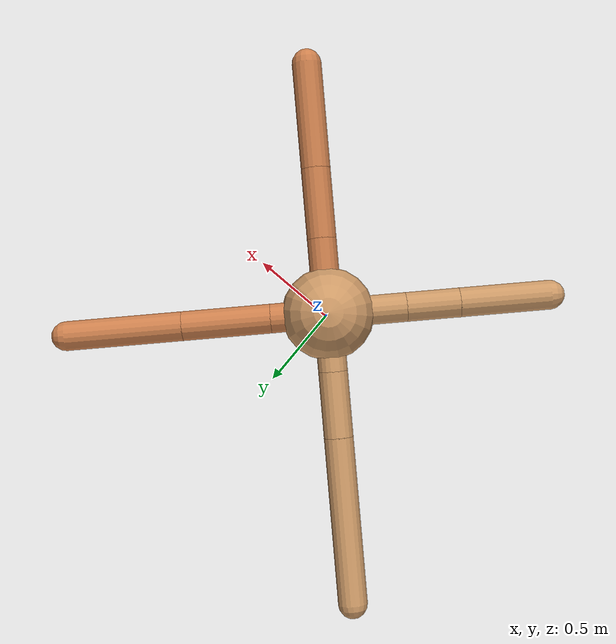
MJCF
<mujoco model="ant">
  <compiler angle="degree" coordinate="local" inertiafromgeom="true" />
  <option integrator="RK4" timestep="0.01" />
  <custom>
    <numeric data="0.0 0.0 0.55 1.0 0.0 0.0 0.0 0.0 1.0 0.0 -1.0 0.0 -1.0 0.0 1.0" name="init_qpos" />
  </custom>
  <default>
    <joint armature="1" damping="1" limited="true" />
    <geom conaffinity="0" condim="3" density="5.0" friction="1.5 0.1 0.1" margin="0.01" rgba="0.8 0.6 0.4 1" />
  </default>
  <worldbody>
    <body name="torso" pos="0 0 0.75">
      <geom name="torso_geom" pos="0 0 0" size="0.25" type="sphere" />

      <body name="front_left_leg" pos="0 0 0">
        <geom fromto="0.0 0.0 0.0 0.21849773861776886 0.21849773861776886 0.0" name="aux_1_geom" size="0.08" type="capsule" rgba=".8 .5 .3 1" />
        <body name="aux_1" pos="0.21849773861776886 0.21849773861776886 0.0">
          <joint axis="0 0 1" name="hip_1" pos="0.0 0.0 0.0" range="-40 40" type="hinge" />
          <geom fromto="0.0 0.0 0.0 0.33710882121506525 0.33710882121506525 0.0" name="left_leg_geom" size="0.08" type="capsule" rgba=".8 .5 .3 1" />
          <body pos="0.33710882121506525 0.33710882121506525 0.0" name="front_left_foot">
            <joint axis="-1 1 0" name="ankle_1" pos="0.0 0.0 0.0" range="30 100" type="hinge" />
            <geom fromto="0.0 0.0 0.0 0.4429250407210706 0.4429250407210706 0.0" name="left_ankle_geom" size="0.08" type="capsule" rgba=".8 .5 .3 1" />
          </body>
        </body>
      </body>
      <body name="front_right_leg" pos="0 0 0">
        <geom fromto="0.0 0.0 0.0 -0.22024141027104577 0.22024141027104577 0.0" name="aux_2_geom" size="0.08" type="capsule" />
        <body name="aux_2" pos="-0.22024141027104577 0.22024141027104577 0.0">
          <joint axis="0 0 1" name="hip_2" pos="0.0 0.0 0.0" range="-40 40" type="hinge" />
          <geom fromto="0.0 0.0 0.0 -0.25186524477903566 0.25186524477903566 0.0" name="right_leg_geom" size="0.08" type="capsule" />
          <body pos="-0.25186524477903566 0.25186524477903566 0.0" name="front_right_foot">
            <joint axis="1 1 0" name="ankle_2" pos="0.0 0.0 0.0" range="-100 -30" type="hinge" />
            <geom fromto="0.0 0.0 0.0 -0.6352436875369157 0.6352436875369157 0.0" name="right_ankle_geom" size="0.08" type="capsule" />
          </body>
        </body>
      </body>
      <body name="left_back_leg" pos="0 0 0">
        <geom fromto="0.0 0.0 0.0 -0.29832477319413897 -0.29832477319413897 0.0" name="aux_3_geom" size="0.08" type="capsule" />
        <body name="aux_3" pos="-0.29832477319413897 -0.29832477319413897 0.0">
          <joint axis="0 0 1" name="hip_3" pos="0.0 0.0 0.0" range="-40 40" type="hinge" />
          <geom fromto="0.0 0.0 0.0 -0.20359327806022068 -0.20359327806022068 0.0" name="back_leg_geom" size="0.08" type="capsule" />
          <body pos="-0.20359327806022068 -0.20359327806022068 0.0" name="left_back_foot">
            <joint axis="-1 1 0" name="ankle_3" pos="0.0 0.0 0.0" range="-100 -30" type="hinge" />
            <geom fromto="0.0 0.0 0.0 -0.3434292430417978 -0.3434292430417978 0.0" name="third_ankle_geom" size="0.08" type="capsule" />
          </body>
        </body>
      </body>
      <body name="right_back_leg" pos="0 0 0">
        <geom fromto="0.0 0.0 0.0 0.2861235538854292 -0.2861235538854292 0.0" name="aux_4_geom" size="0.08" type="capsule" rgba=".8 .5 .3 1" />
        <body name="aux_4" pos="0.2861235538854292 -0.2861235538854292 0.0">
          <joint axis="0 0 1" name="hip_4" pos="0.0 0.0 0.0" range="-40 40" type="hinge" />
          <geom fromto="0.0 0.0 0.0 0.2673732933336218 -0.2673732933336218 0.0" name="rightback_leg_geom" size="0.08" type="capsule" rgba=".8 .5 .3 1" />
          <body pos="0.2673732933336218 -0.2673732933336218 0.0" name="right_back_foot">
            <joint axis="1 1 0" name="ankle_4" pos="0.0 0.0 0.0" range="30 100" type="hinge" />
            <geom fromto="0.0 0.0 0.0 0.40072186264196424 -0.40072186264196424 0.0" name="fourth_ankle_geom" size="0.08" type="capsule" rgba=".8 .5 .3 1" />
          </body>
        </body>
      </body>
    </body>
  </worldbody>
  <actuator>
    <motor ctrllimited="true" ctrlrange="-1.0 1.0" joint="hip_4" gear="150" />
    <motor ctrllimited="true" ctrlrange="-1.0 1.0" joint="ankle_4" gear="150" />
    <motor ctrllimited="true" ctrlrange="-1.0 1.0" joint="hip_1" gear="150" />
    <motor ctrllimited="true" ctrlrange="-1.0 1.0" joint="ankle_1" gear="150" />
    <motor ctrllimited="true" ctrlrange="-1.0 1.0" joint="hip_2" gear="150" />
    <motor ctrllimited="true" ctrlrange="-1.0 1.0" joint="ankle_2" gear="150" />
    <motor ctrllimited="true" ctrlrange="-1.0 1.0" joint="hip_3" gear="150" />
    <motor ctrllimited="true" ctrlrange="-1.0 1.0" joint="ankle_3" gear="150" />
  </actuator>
</mujoco>
